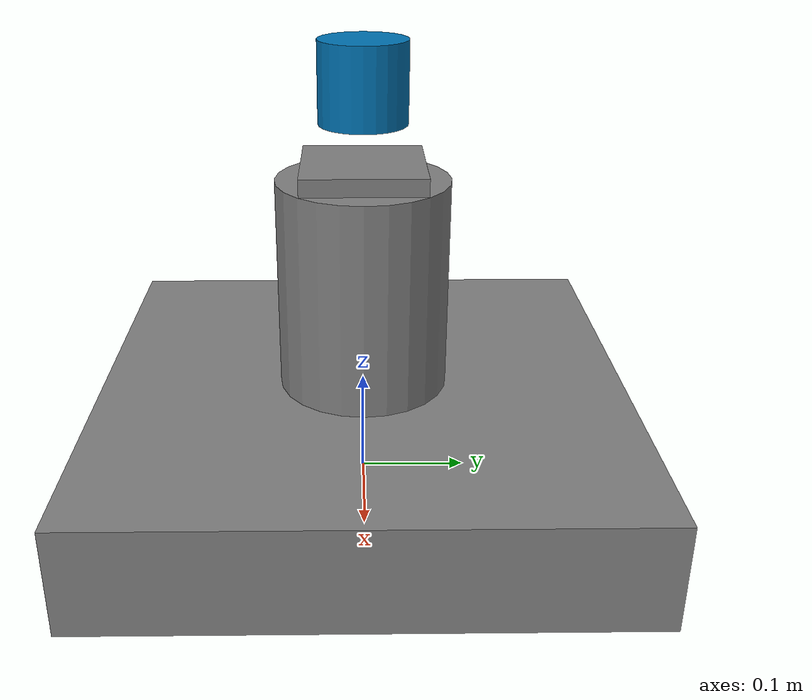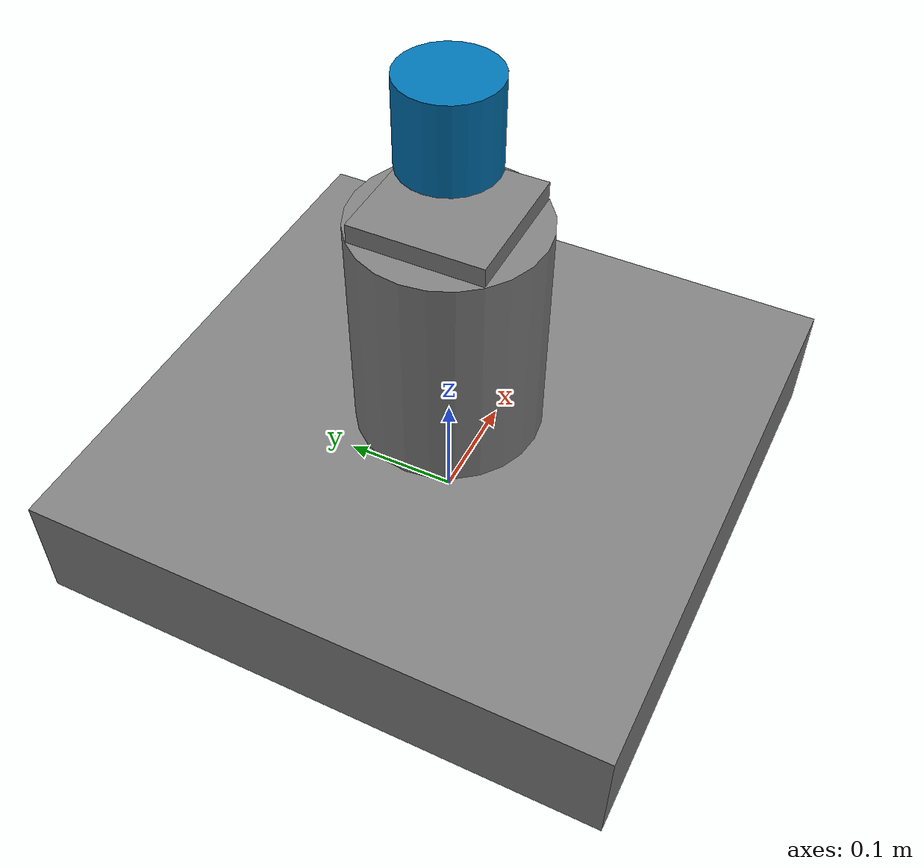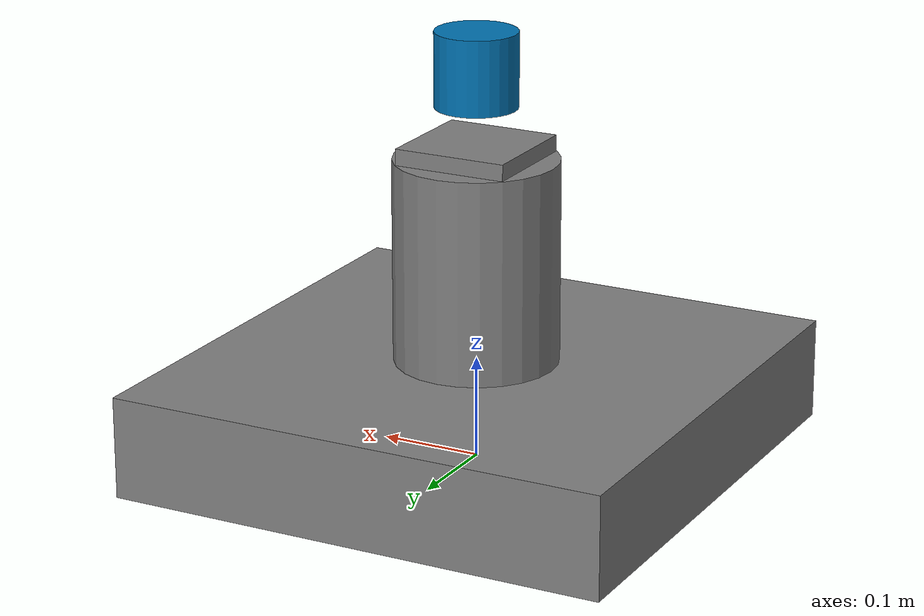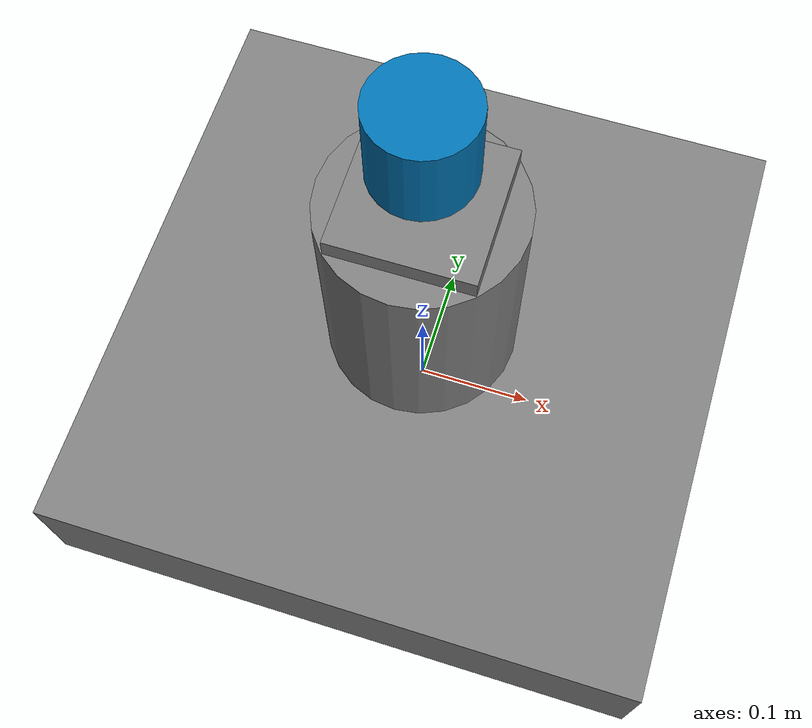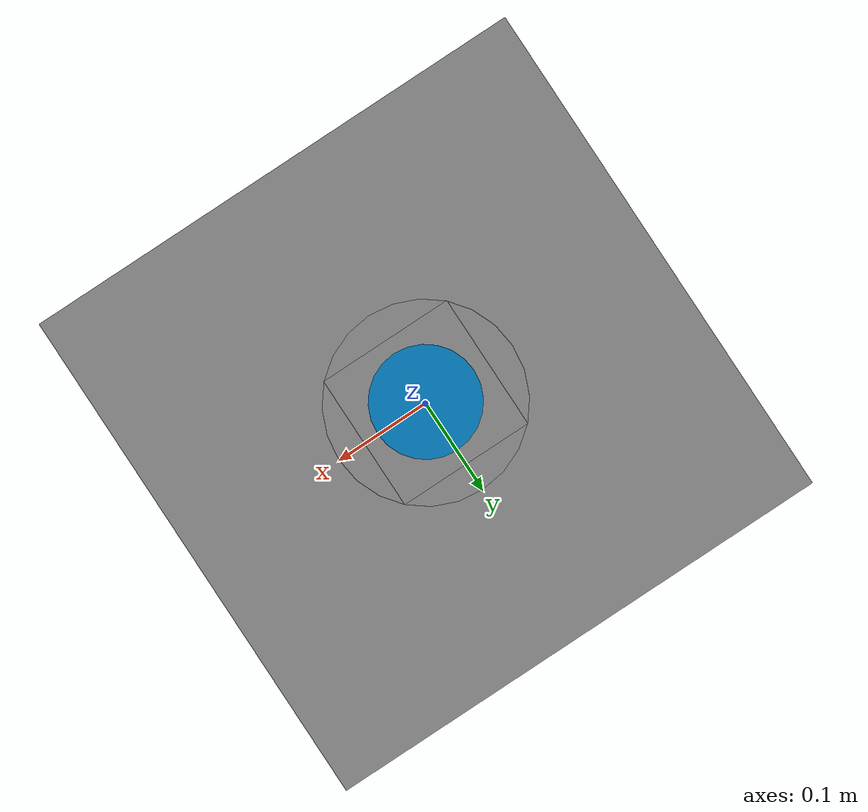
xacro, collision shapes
<?xml version="1.0"?>
<robot xmlns:xacro="http://www.ros.org/wiki/xacro" name="os1_example">

  <!-- Base Footprint -->
  <link name="base_footprint" />

  <!-- Base Link -->
  <joint name="footprint" type="fixed" >
   <parent link="base_footprint" />
    <child link="base_link" />
    <origin xyz="0 0 0.05" rpy="0 0 0" />
  </joint>
  <link name="base_link" >
    <visual>
      <geometry>
        <box size="0.5 0.5 0.1" />
      </geometry>
    </visual>
    <visual>
      <origin xyz="0 0 0.15" rpy="0 0 0" />
      <geometry>
        <cylinder radius="0.08" length="0.2"/>
      </geometry>
      <material name="gray"><color rgba="0.5 0.5 0.5 1.0"/></material>
    </visual>
    <collision>
      <geometry>
        <box size="0.5 0.5 0.1" />
      </geometry>
    </collision>
    <collision>
      <origin xyz="0 0 0.15" rpy="0 0 0" />
      <geometry>
        <cylinder radius="0.08" length="0.2"/>
      </geometry>
    </collision>
    <inertial>
      <origin xyz="0 0 0"/>
      <mass value="10"/>
      <inertia ixx="3.0" ixy="0.0" ixz="0.0"
               iyy="3.0" iyz="0.0"
               izz="3.0" />
    </inertial>
  </link>

  <xacro:include filename="$(find ouster_description)/urdf/OS1-32.urdf.xacro"/>
  <xacro:OS1-32 parent="base_link" name="os1_sensor" hz="10" samples="220">
    <origin xyz="0 0 0.25" rpy="0 0 0" />
  </xacro:OS1-32>

</robot>

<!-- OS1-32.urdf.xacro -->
<robot xmlns:xacro="http://www.ros.org/wiki/xacro" name="OS1-32">
  <xacro:property name="M_PI" value="3.1415926535897931" />
  <xacro:macro name="OS1-32" params="*origin parent:=base_link name:=os_sensor topic_points:=/ouster/points topic_imu:=/ouster/imu hz:=10 lasers:=32 samples:=1024 min_range:=0.3 max_range:=75.0 noise:=0.008 min_angle:=-${M_PI} max_angle:=${M_PI} lidar_link:=os_lidar imu_link:=os_imu vfov_min:=-.393 vfov_max:=.393">

    <!-- Links and Joints -->
    <joint name="${name}_mount_joint" type="fixed">
      <xacro:insert_block name="origin" />
      <parent link="${parent}"/>
      <child link="${name}_base_link"/>
    </joint>

    <link name="${name}_base_link" />

    <joint name="${name}_base_to_baseplate" type="fixed">
      <parent link="${name}_base_link"/>
      <child link="${name}_baseplate" />
      <origin xyz="0 0 0.008"/>
    </joint>

    <link name="${name}_baseplate">
      <visual>
        <geometry><box size="0.112 0.112 0.016" /></geometry>
        <material name="silver"><color rgba="0.5 0.5 0.5 1.0" /></material>
      </visual>
      <collision>
        <geometry><box size="0.112 0.112 0.016" /></geometry>
      </collision>
    </link>

    <joint name="${name}_baseplate_to_body" type="fixed">
      <parent link="${name}_baseplate"/>
      <child link="${name}"/>
      <origin xyz="0 0 0.042" rpy="0 0 0" />
    </joint>

    <link name="${name}">
      <inertial>
         <mass value="0.33"/>
         <origin xyz="0 0 0.0365" rpy="0 0 0" />
         <inertia ixx="0.000241148" ixy="0" ixz="0" iyy="0.000241148" iyz="0" izz="0.000264"/>
      </inertial>
      <collision name="base_collision">
         <origin xyz="0 0 0.0365" rpy="0 0 0" />
         <geometry><cylinder radius="0.04" length="0.073"/></geometry>
      </collision>
      <visual name="base_visual">
         <origin xyz="0 0 0.0" rpy="0 0 1.5707" />
         <geometry>
          <mesh filename="package://ouster_description/meshes/os1_64.dae" />
        </geometry>

      </visual>
    </link>

    <link name="${imu_link}" />
    <link name="${lidar_link}" />

    <joint name="${name}_imu_link_joint" type="fixed">
      <parent link="${name}" />
      <child link="${imu_link}" />
      <origin xyz="0.006253 -0.011775 0.007645" rpy="0 0 0" />
    </joint>

    <joint name="${name}_lidar_link_joint" type="fixed">
      <parent link="${name}" />
      <child link="${lidar_link}" />
      <origin xyz="0.0 0.0 0.03618" rpy="0 0 0" />
    </joint>

    <!-- MODERN GAZEBO SENSORS -->

    <!-- GPU Lidar Sensor -->
    <gazebo reference="${lidar_link}">
      <sensor name="${name}-OS1-32" type="gpu_lidar">
        <gz_frame_id>${lidar_link}</gz_frame_id>
        <pose>0 0 0 0 0 0</pose>
        <topic>${topic_points}</topic>
        <update_rate>${hz}</update_rate>
        <lidar>
          <scan>
            <horizontal>
              <samples>${samples}</samples>
              <resolution>1</resolution>
              <min_angle>${min_angle}</min_angle>
              <max_angle>${max_angle}</max_angle>
            </horizontal>
            <vertical>
              <samples>${lasers}</samples>
              <resolution>1</resolution>
              <min_angle>${vfov_min}</min_angle>
              <max_angle>${vfov_max}</max_angle>
            </vertical>
          </scan>
          <range>
            <min>${min_range}</min>
            <max>${max_range}</max>
            <resolution>0.01</resolution>
          </range>
          <noise>
            <type>gaussian</type>
            <mean>0.0</mean>
            <stddev>${noise}</stddev>
          </noise>
        </lidar>
        <always_on>1</always_on>
        <visualize>false</visualize>
      </sensor>
    </gazebo>

    <!-- IMU Sensor -->
    <gazebo reference="${imu_link}">
      <sensor name="${name}_imu" type="imu">
        <gz_frame_id>${imu_link}</gz_frame_id>
        <always_on>1</always_on>
        <update_rate>100</update_rate>
        <topic>${topic_imu}</topic>
        <imu>
          <angular_velocity>
            <x><noise type="gaussian"><mean>0.0</mean><stddev>0.005</stddev></noise></x>
            <y><noise type="gaussian"><mean>0.0</mean><stddev>0.005</stddev></noise></y>
            <z><noise type="gaussian"><mean>0.0</mean><stddev>0.005</stddev></noise></z>
          </angular_velocity>
          <linear_acceleration>
            <x><noise type="gaussian"><mean>0.0</mean><stddev>0.005</stddev></noise></x>
            <y><noise type="gaussian"><mean>0.0</mean><stddev>0.005</stddev></noise></y>
            <z><noise type="gaussian"><mean>0.0</mean><stddev>0.005</stddev></noise></z>
          </linear_acceleration>
        </imu>
      </sensor>
    </gazebo>

  </xacro:macro>
</robot>
